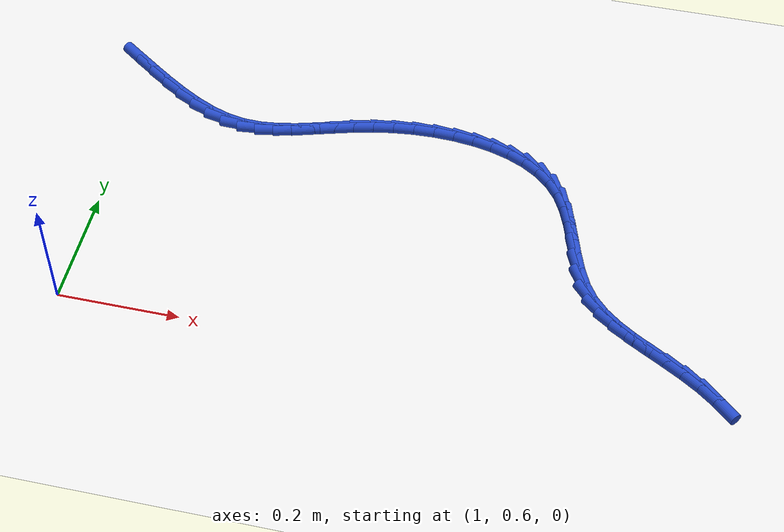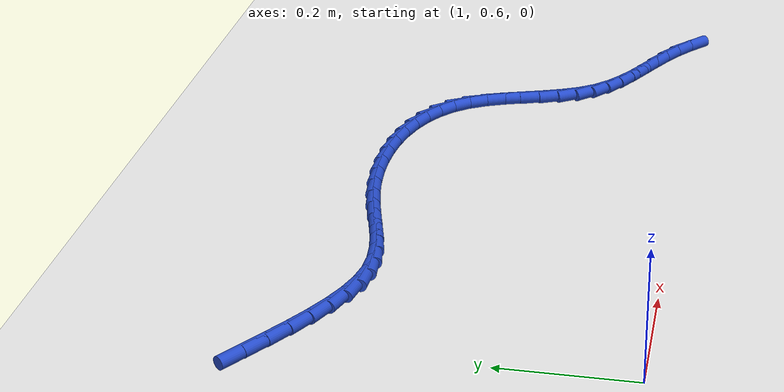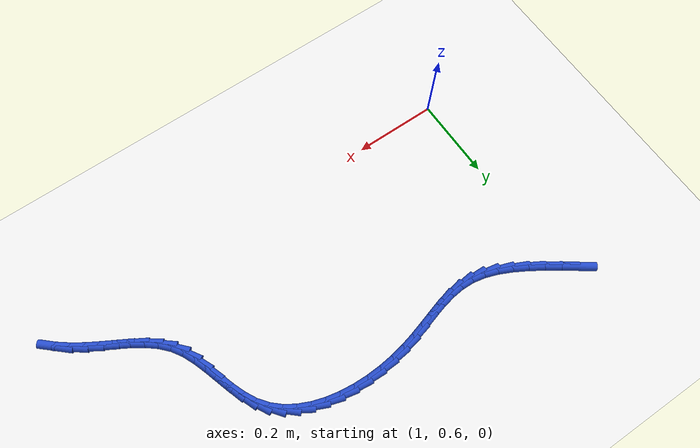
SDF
<sdf version="1.6">
 <world name="default">
  <model name="ground_plane">
   <static>1</static>
   <link name="link">
    <collision name="collision">
     <geometry><plane><normal>0 0 1</normal><size>100 100</size></plane></geometry>
     <surface><friction><ode><mu>100</mu><mu2>50</mu2></ode></friction></surface>
    </collision>
    <visual name="visual">
     <cast_shadows>0</cast_shadows>
     <geometry><plane><normal>0 0 1</normal><size>100 100</size></plane></geometry>
     <material>
      <script><uri>file://media/materials/scripts/gazebo.material</uri><name>Gazebo/WhiteGlow</name></script>
     </material>
    </visual>
   </link>
  </model>
  <model name="line">
   <link name="link_55">
    <pose>0.969964922752165 1.1223592897451264 0.01 0 1.57 -0.6168771979844756</pose>
    <collision name="collision">
     <geometry><cylinder><radius>0.01</radius><length>0.08</length></cylinder></geometry>
    </collision>
    <visual name="visual">
     <material>
      <script><name>Gazebo/Blue</name><uri>file://media/materials/scripts/gazebo.material</uri></script>
     </material>
     <geometry><cylinder><radius>0.01</radius><length>0.08</length></cylinder></geometry>
    </visual>
   </link>
   <link name="link_56">
    <pose>1.0009284945434687 1.1003997670255883 0.01 0 1.57 -0.6024866604351783</pose>
    <collision name="collision">
     <geometry><cylinder><radius>0.01</radius><length>0.08</length></cylinder></geometry>
    </collision>
    <visual name="visual">
     <material>
      <script><name>Gazebo/Blue</name><uri>file://media/materials/scripts/gazebo.material</uri></script>
     </material>
     <geometry><cylinder><radius>0.01</radius><length>0.08</length></cylinder></geometry>
    </visual>
   </link>
   <link name="link_57">
    <pose>1.0322888634776015 1.0788303071807774 0.01 0 1.57 -0.5704710401238443</pose>
    <collision name="collision">
     <geometry><cylinder><radius>0.01</radius><length>0.08</length></cylinder></geometry>
    </collision>
    <visual name="visual">
     <material>
      <script><name>Gazebo/Blue</name><uri>file://media/materials/scripts/gazebo.material</uri></script>
     </material>
     <geometry><cylinder><radius>0.01</radius><length>0.08</length></cylinder></geometry>
    </visual>
   </link>
   <link name="link_58">
    <pose>1.0638723730478594 1.0585652752346917 0.01 0 1.57 -0.5184366785800043</pose>
    <collision name="collision">
     <geometry><cylinder><radius>0.01</radius><length>0.08</length></cylinder></geometry>
    </collision>
    <visual name="visual">
     <material>
      <script><name>Gazebo/Blue</name><uri>file://media/materials/scripts/gazebo.material</uri></script>
     </material>
     <geometry><cylinder><radius>0.01</radius><length>0.08</length></cylinder></geometry>
    </visual>
   </link>
   <link name="link_59">
    <pose>1.095505366747537 1.0405190362113288 0.01 0 1.57 -0.4420592331321843</pose>
    <collision name="collision">
     <geometry><cylinder><radius>0.01</radius><length>0.08</length></cylinder></geometry>
    </collision>
    <visual name="visual">
     <material>
      <script><name>Gazebo/Blue</name><uri>file://media/materials/scripts/gazebo.material</uri></script>
     </material>
     <geometry><cylinder><radius>0.01</radius><length>0.08</length></cylinder></geometry>
    </visual>
   </link>
   <link name="link_60">
    <pose>1.1270141880699294 1.0256059551346866 0.01 0 1.57 -0.33501007679071076</pose>
    <collision name="collision">
     <geometry><cylinder><radius>0.01</radius><length>0.08</length></cylinder></geometry>
    </collision>
    <visual name="visual">
     <material>
      <script><name>Gazebo/Blue</name><uri>file://media/materials/scripts/gazebo.material</uri></script>
     </material>
     <geometry><cylinder><radius>0.01</radius><length>0.08</length></cylinder></geometry>
    </visual>
   </link>
   <link name="link_61">
    <pose>1.1582251805083317 1.0147403970287618 0.01 0 1.57 -0.19038023095462722</pose>
    <collision name="collision">
     <geometry><cylinder><radius>0.01</radius><length>0.08</length></cylinder></geometry>
    </collision>
    <visual name="visual">
     <material>
      <script><name>Gazebo/Blue</name><uri>file://media/materials/scripts/gazebo.material</uri></script>
     </material>
     <geometry><cylinder><radius>0.01</radius><length>0.08</length></cylinder></geometry>
    </visual>
   </link>
   <link name="link_62">
    <pose>1.1889694323852427 1.0088155443246916 0.01 0 1.57 -0.029763182578734455</pose>
    <collision name="collision">
     <geometry><cylinder><radius>0.01</radius><length>0.08</length></cylinder></geometry>
    </collision>
    <visual name="visual">
     <material>
      <script><name>Gazebo/Blue</name><uri>file://media/materials/scripts/gazebo.material</uri></script>
     </material>
     <geometry><cylinder><radius>0.01</radius><length>0.08</length></cylinder></geometry>
    </visual>
   </link>
   <link name="link_63">
    <pose>1.219259656298973 1.007913744558719 0.01 0 1.57 0.104577634921689</pose>
    <collision name="collision">
     <geometry><cylinder><radius>0.01</radius><length>0.08</length></cylinder></geometry>
    </collision>
    <visual name="visual">
     <material>
      <script><name>Gazebo/Blue</name><uri>file://media/materials/scripts/gazebo.material</uri></script>
     </material>
     <geometry><cylinder><radius>0.01</radius><length>0.08</length></cylinder></geometry>
    </visual>
   </link>
   <link name="link_64">
    <pose>1.2493428763923315 1.0110712958020205 0.01 0 1.57 0.20237610220196295</pose>
    <collision name="collision">
     <geometry><cylinder><radius>0.01</radius><length>0.08</length></cylinder></geometry>
    </collision>
    <visual name="visual">
     <material>
      <script><name>Gazebo/Blue</name><uri>file://media/materials/scripts/gazebo.material</uri></script>
     </material>
     <geometry><cylinder><radius>0.01</radius><length>0.08</length></cylinder></geometry>
    </visual>
   </link>
   <link name="link_65">
    <pose>1.2794816138638017 1.0172553117975678 0.01 0 1.57 0.2623116999090898</pose>
    <collision name="collision">
     <geometry><cylinder><radius>0.01</radius><length>0.08</length></cylinder></geometry>
    </collision>
    <visual name="visual">
     <material>
      <script><name>Gazebo/Blue</name><uri>file://media/materials/scripts/gazebo.material</uri></script>
     </material>
     <geometry><cylinder><radius>0.01</radius><length>0.08</length></cylinder></geometry>
    </visual>
   </link>
   <link name="link_66">
    <pose>1.3099383899118666 1.0254329062883318 0.01 0 1.57 0.2863378324115038</pose>
    <collision name="collision">
     <geometry><cylinder><radius>0.01</radius><length>0.08</length></cylinder></geometry>
    </collision>
    <visual name="visual">
     <material>
      <script><name>Gazebo/Blue</name><uri>file://media/materials/scripts/gazebo.material</uri></script>
     </material>
     <geometry><cylinder><radius>0.01</radius><length>0.08</length></cylinder></geometry>
    </visual>
   </link>
   <link name="link_67">
    <pose>1.340975725735008 1.0345711930172836 0.01 0 1.57 0.2770638922318361</pose>
    <collision name="collision">
     <geometry><cylinder><radius>0.01</radius><length>0.08</length></cylinder></geometry>
    </collision>
    <visual name="visual">
     <material>
      <script><name>Gazebo/Blue</name><uri>file://media/materials/scripts/gazebo.material</uri></script>
     </material>
     <geometry><cylinder><radius>0.01</radius><length>0.08</length></cylinder></geometry>
    </visual>
   </link>
   <link name="link_68">
    <pose>1.3728561425317098 1.0436372857273948 0.01 0 1.57 0.2368164613707582</pose>
    <collision name="collision">
     <geometry><cylinder><radius>0.01</radius><length>0.08</length></cylinder></geometry>
    </collision>
    <visual name="visual">
     <material>
      <script><name>Gazebo/Blue</name><uri>file://media/materials/scripts/gazebo.material</uri></script>
     </material>
     <geometry><cylinder><radius>0.01</radius><length>0.08</length></cylinder></geometry>
    </visual>
   </link>
   <link name="link_69">
    <pose>1.4058421595792607 1.0515983002713378 0.01 0 1.57 0.17305006333005546</pose>
    <collision name="collision">
     <geometry><cylinder><radius>0.01</radius><length>0.08</length></cylinder></geometry>
    </collision>
    <visual name="visual">
     <material>
      <script><name>Gazebo/Blue</name><uri>file://media/materials/scripts/gazebo.material</uri></script>
     </material>
     <geometry><cylinder><radius>0.01</radius><length>0.08</length></cylinder></geometry>
    </visual>
   </link>
   <link name="link_70">
    <pose>1.4400533205312338 1.0575783569273383 0.01 0 1.57 0.10544905646195034</pose>
    <collision name="collision">
     <geometry><cylinder><radius>0.01</radius><length>0.08</length></cylinder></geometry>
    </collision>
    <visual name="visual">
     <material>
      <script><name>Gazebo/Blue</name><uri>file://media/materials/scripts/gazebo.material</uri></script>
     </material>
     <geometry><cylinder><radius>0.01</radius><length>0.08</length></cylinder></geometry>
    </visual>
   </link>
   <link name="link_71">
    <pose>1.4750775320953884 1.0612853772616262 0.01 0 1.57 0.0361743263684197</pose>
    <collision name="collision">
     <geometry><cylinder><radius>0.01</radius><length>0.08</length></cylinder></geometry>
    </collision>
    <visual name="visual">
     <material>
      <script><name>Gazebo/Blue</name><uri>file://media/materials/scripts/gazebo.material</uri></script>
     </material>
     <geometry><cylinder><radius>0.01</radius><length>0.08</length></cylinder></geometry>
    </visual>
   </link>
   <link name="link_72">
    <pose>1.5103791586795463 1.062562947139907 0.01 0 1.57 -0.03731621830174317</pose>
    <collision name="collision">
     <geometry><cylinder><radius>0.01</radius><length>0.08</length></cylinder></geometry>
    </collision>
    <visual name="visual">
     <material>
      <script><name>Gazebo/Blue</name><uri>file://media/materials/scripts/gazebo.material</uri></script>
     </material>
     <geometry><cylinder><radius>0.01</radius><length>0.08</length></cylinder></geometry>
    </visual>
   </link>
   <link name="link_73">
    <pose>1.5454225646915274 1.061254652427885 0.01 0 1.57 -0.1177196578502447</pose>
    <collision name="collision">
     <geometry><cylinder><radius>0.01</radius><length>0.08</length></cylinder></geometry>
    </collision>
    <visual name="visual">
     <material>
      <script><name>Gazebo/Blue</name><uri>file://media/materials/scripts/gazebo.material</uri></script>
     </material>
     <geometry><cylinder><radius>0.01</radius><length>0.08</length></cylinder></geometry>
    </visual>
   </link>
   <link name="link_74">
    <pose>1.5796721145391537 1.0572040789912653 0.01 0 1.57 -0.20804090591801241</pose>
    <collision name="collision">
     <geometry><cylinder><radius>0.01</radius><length>0.08</length></cylinder></geometry>
    </collision>
    <visual name="visual">
     <material>
      <script><name>Gazebo/Blue</name><uri>file://media/materials/scripts/gazebo.material</uri></script>
     </material>
     <geometry><cylinder><radius>0.01</radius><length>0.08</length></cylinder></geometry>
    </visual>
   </link>
   <link name="link_75">
    <pose>1.6125921726302448 1.0502548126957534 0.01 0 1.57 -0.31165281383982457</pose>
    <collision name="collision">
     <geometry><cylinder><radius>0.01</radius><length>0.08</length></cylinder></geometry>
    </collision>
    <visual name="visual">
     <material>
      <script><name>Gazebo/Blue</name><uri>file://media/materials/scripts/gazebo.material</uri></script>
     </material>
     <geometry><cylinder><radius>0.01</radius><length>0.08</length></cylinder></geometry>
    </visual>
   </link>
   <link name="link_76">
    <pose>1.6436471033726219 1.0402504394070535 0.01 0 1.57 -0.4321457580533304</pose>
    <collision name="collision">
     <geometry><cylinder><radius>0.01</radius><length>0.08</length></cylinder></geometry>
    </collision>
    <visual name="visual">
     <material>
      <script><name>Gazebo/Blue</name><uri>file://media/materials/scripts/gazebo.material</uri></script>
     </material>
     <geometry><cylinder><radius>0.01</radius><length>0.08</length></cylinder></geometry>
    </visual>
   </link>
   <link name="link_77">
    <pose>1.6723012711741059 1.0270345449908709 0.01 0 1.57 -0.5727387896171474</pose>
    <collision name="collision">
     <geometry><cylinder><radius>0.01</radius><length>0.08</length></cylinder></geometry>
    </collision>
    <visual name="visual">
     <material>
      <script><name>Gazebo/Blue</name><uri>file://media/materials/scripts/gazebo.material</uri></script>
     </material>
     <geometry><cylinder><radius>0.01</radius><length>0.08</length></cylinder></geometry>
    </visual>
   </link>
   <link name="link_78">
    <pose>1.6980190404425184 1.0104507153129099 0.01 0 1.57 -0.7349720336584797</pose>
    <collision name="collision">
     <geometry><cylinder><radius>0.01</radius><length>0.08</length></cylinder></geometry>
    </collision>
    <visual name="visual">
     <material>
      <script><name>Gazebo/Blue</name><uri>file://media/materials/scripts/gazebo.material</uri></script>
     </material>
     <geometry><cylinder><radius>0.01</radius><length>0.08</length></cylinder></geometry>
    </visual>
   </link>
   <link name="link_79">
    <pose>1.7202647755856781 0.990342536238876 0.01 0 1.57 -0.9164704038280731</pose>
    <collision name="collision">
     <geometry><cylinder><radius>0.01</radius><length>0.08</length></cylinder></geometry>
    </collision>
    <visual name="visual">
     <material>
      <script><name>Gazebo/Blue</name><uri>file://media/materials/scripts/gazebo.material</uri></script>
     </material>
     <geometry><cylinder><radius>0.01</radius><length>0.08</length></cylinder></geometry>
    </visual>
   </link>
   <link name="link_80">
    <pose>1.7385089057036103 0.9665578266056106 0.01 0 1.57 -1.086791762393636</pose>
    <collision name="collision">
     <geometry><cylinder><radius>0.01</radius><length>0.08</length></cylinder></geometry>
    </collision>
    <visual name="visual">
     <material>
      <script><name>Gazebo/Blue</name><uri>file://media/materials/scripts/gazebo.material</uri></script>
     </material>
     <geometry><cylinder><radius>0.01</radius><length>0.08</length></cylinder></geometry>
    </visual>
   </link>
   <link name="link_81">
    <pose>1.7528098469880362 0.93935480239868 0.01 0 1.57 -1.2007898940351998</pose>
    <collision name="collision">
     <geometry><cylinder><radius>0.01</radius><length>0.08</length></cylinder></geometry>
    </collision>
    <visual name="visual">
     <material>
      <script><name>Gazebo/Blue</name><uri>file://media/materials/scripts/gazebo.material</uri></script>
     </material>
     <geometry><cylinder><radius>0.01</radius><length>0.08</length></cylinder></geometry>
    </visual>
   </link>
   <link name="link_82">
    <pose>1.7642968973734725 0.9097391225663795 0.01 0 1.57 -1.2606755758297927</pose>
    <collision name="collision">
     <geometry><cylinder><radius>0.01</radius><length>0.08</length></cylinder></geometry>
    </collision>
    <visual name="visual">
     <material>
      <script><name>Gazebo/Blue</name><uri>file://media/materials/scripts/gazebo.material</uri></script>
     </material>
     <geometry><cylinder><radius>0.01</radius><length>0.08</length></cylinder></geometry>
    </visual>
   </link>
   <link name="link_83">
    <pose>1.7742130206488198 0.8787957813744038 0.01 0 1.57 -1.272518125706769</pose>
    <collision name="collision">
     <geometry><cylinder><radius>0.01</radius><length>0.08</length></cylinder></geometry>
    </collision>
    <visual name="visual">
     <material>
      <script><name>Gazebo/Blue</name><uri>file://media/materials/scripts/gazebo.material</uri></script>
     </material>
     <geometry><cylinder><radius>0.01</radius><length>0.08</length></cylinder></geometry>
    </visual>
   </link>
   <link name="link_84">
    <pose>1.7838011806029819 0.8476097730884484 0.01 0 1.57 -1.2375644303284148</pose>
    <collision name="collision">
     <geometry><cylinder><radius>0.01</radius><length>0.08</length></cylinder></geometry>
    </collision>
    <visual name="visual">
     <material>
      <script><name>Gazebo/Blue</name><uri>file://media/materials/scripts/gazebo.material</uri></script>
     </material>
     <geometry><cylinder><radius>0.01</radius><length>0.08</length></cylinder></geometry>
    </visual>
   </link>
   <link name="link_85">
    <pose>1.7943043410248594 0.8172660919742074 0.01 0 1.57 -1.1516428490568216</pose>
    <collision name="collision">
     <geometry><cylinder><radius>0.01</radius><length>0.08</length></cylinder></geometry>
    </collision>
    <visual name="visual">
     <material>
      <script><name>Gazebo/Blue</name><uri>file://media/materials/scripts/gazebo.material</uri></script>
     </material>
     <geometry><cylinder><radius>0.01</radius><length>0.08</length></cylinder></geometry>
    </visual>
   </link>
   <link name="link_86">
    <pose>1.8069654657033543 0.7888497322973772 0.01 0 1.57 -1.0072085564155473</pose>
    <collision name="collision">
     <geometry><cylinder><radius>0.01</radius><length>0.08</length></cylinder></geometry>
    </collision>
    <visual name="visual">
     <material>
      <script><name>Gazebo/Blue</name><uri>file://media/materials/scripts/gazebo.material</uri></script>
     </material>
     <geometry><cylinder><radius>0.01</radius><length>0.08</length></cylinder></geometry>
    </visual>
   </link>
   <link name="link_87">
    <pose>1.8230226722200138 0.7634411045453814 0.01 0 1.57 -0.8298793850657311</pose>
    <collision name="collision">
     <geometry><cylinder><radius>0.01</radius><length>0.08</length></cylinder></geometry>
    </collision>
    <visual name="visual">
     <material>
      <script><name>Gazebo/Blue</name><uri>file://media/materials/scripts/gazebo.material</uri></script>
     </material>
     <geometry><cylinder><radius>0.01</radius><length>0.08</length></cylinder></geometry>
    </visual>
   </link>
   <link name="link_88">
    <pose>1.843077153402812 0.7415181848416587 0.01 0 1.57 -0.6862522929552971</pose>
    <collision name="collision">
     <geometry><cylinder><radius>0.01</radius><length>0.08</length></cylinder></geometry>
    </collision>
    <visual name="visual">
     <material>
      <script><name>Gazebo/Blue</name><uri>file://media/materials/scripts/gazebo.material</uri></script>
     </material>
     <geometry><cylinder><radius>0.01</radius><length>0.08</length></cylinder></geometry>
    </visual>
   </link>
   <link name="link_89">
    <pose>1.8664649429638493 0.7223623003757843 0.01 0 1.57 -0.5873866066985317</pose>
    <collision name="collision">
     <geometry><cylinder><radius>0.01</radius><length>0.08</length></cylinder></geometry>
    </collision>
    <visual name="visual">
     <material>
      <script><name>Gazebo/Blue</name><uri>file://media/materials/scripts/gazebo.material</uri></script>
     </material>
     <geometry><cylinder><radius>0.01</radius><length>0.08</length></cylinder></geometry>
    </visual>
   </link>
   <link name="link_90">
    <pose>1.8923727076621224 0.7051134998191315 0.01 0 1.57 -0.5305906490828892</pose>
    <collision name="collision">
     <geometry><cylinder><radius>0.01</radius><length>0.08</length></cylinder></geometry>
    </collision>
    <visual name="visual">
     <material>
      <script><name>Gazebo/Blue</name><uri>file://media/materials/scripts/gazebo.material</uri></script>
     </material>
     <geometry><cylinder><radius>0.01</radius><length>0.08</length></cylinder></geometry>
    </visual>
   </link>
   <link name="link_91">
    <pose>1.9199871142566312 0.6889118318430729 0.01 0 1.57 -0.5118269488983795</pose>
    <collision name="collision">
     <geometry><cylinder><radius>0.01</radius><length>0.08</length></cylinder></geometry>
    </collision>
    <visual name="visual">
     <material>
      <script><name>Gazebo/Blue</name><uri>file://media/materials/scripts/gazebo.material</uri></script>
     </material>
     <geometry><cylinder><radius>0.01</radius><length>0.08</length></cylinder></geometry>
    </visual>
   </link>
   <link name="link_92">
    <pose>1.9484948295063735 0.6728973451189811 0.01 0 1.57 -0.5283642019674796</pose>
    <collision name="collision">
     <geometry><cylinder><radius>0.01</radius><length>0.08</length></cylinder></geometry>
    </collision>
    <visual name="visual">
     <material>
      <script><name>Gazebo/Blue</name><uri>file://media/materials/scripts/gazebo.material</uri></script>
     </material>
     <geometry><cylinder><radius>0.01</radius><length>0.08</length></cylinder></geometry>
    </visual>
   </link>
   <link name="link_93">
    <pose>1.9770825201703486 0.6562100883182287 0.01 0 1.57 -0.579262958731101</pose>
    <collision name="collision">
     <geometry><cylinder><radius>0.01</radius><length>0.08</length></cylinder></geometry>
    </collision>
    <visual name="visual">
     <material>
      <script><name>Gazebo/Blue</name><uri>file://media/materials/scripts/gazebo.material</uri></script>
     </material>
     <geometry><cylinder><radius>0.01</radius><length>0.08</length></cylinder></geometry>
    </visual>
   </link>
   <link name="link_94">
    <pose>2.0049368639973912 0.637990129054641 0.01 0 1.57 -0.6574404219822582</pose>
    <collision name="collision">
     <geometry><cylinder><radius>0.01</radius><length>0.08</length></cylinder></geometry>
    </collision>
    <visual name="visual">
     <material>
      <script><name>Gazebo/Blue</name><uri>file://media/materials/scripts/gazebo.material</uri></script>
     </material>
     <geometry><cylinder><radius>0.01</radius><length>0.08</length></cylinder></geometry>
    </visual>
   </link>
   <link name="link_95">
    <pose>2.031365854365537 0.6175866386430687 0.01 0 1.57 -0.7384014974011539</pose>
    <collision name="collision">
     <geometry><cylinder><radius>0.01</radius><length>0.08</length></cylinder></geometry>
    </collision>
    <visual name="visual">
     <material>
      <script><name>Gazebo/Blue</name><uri>file://media/materials/scripts/gazebo.material</uri></script>
     </material>
     <geometry><cylinder><radius>0.01</radius><length>0.08</length></cylinder></geometry>
    </visual>
   </link>
  </model>
 </world>
</sdf>
